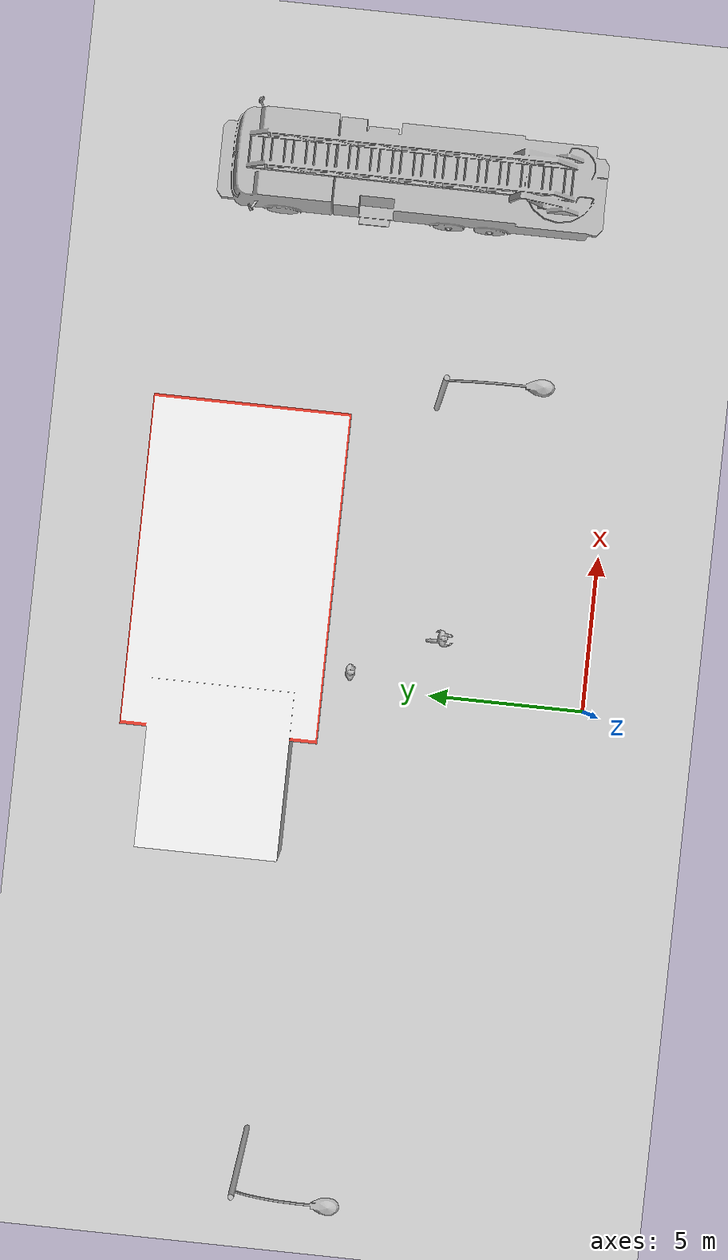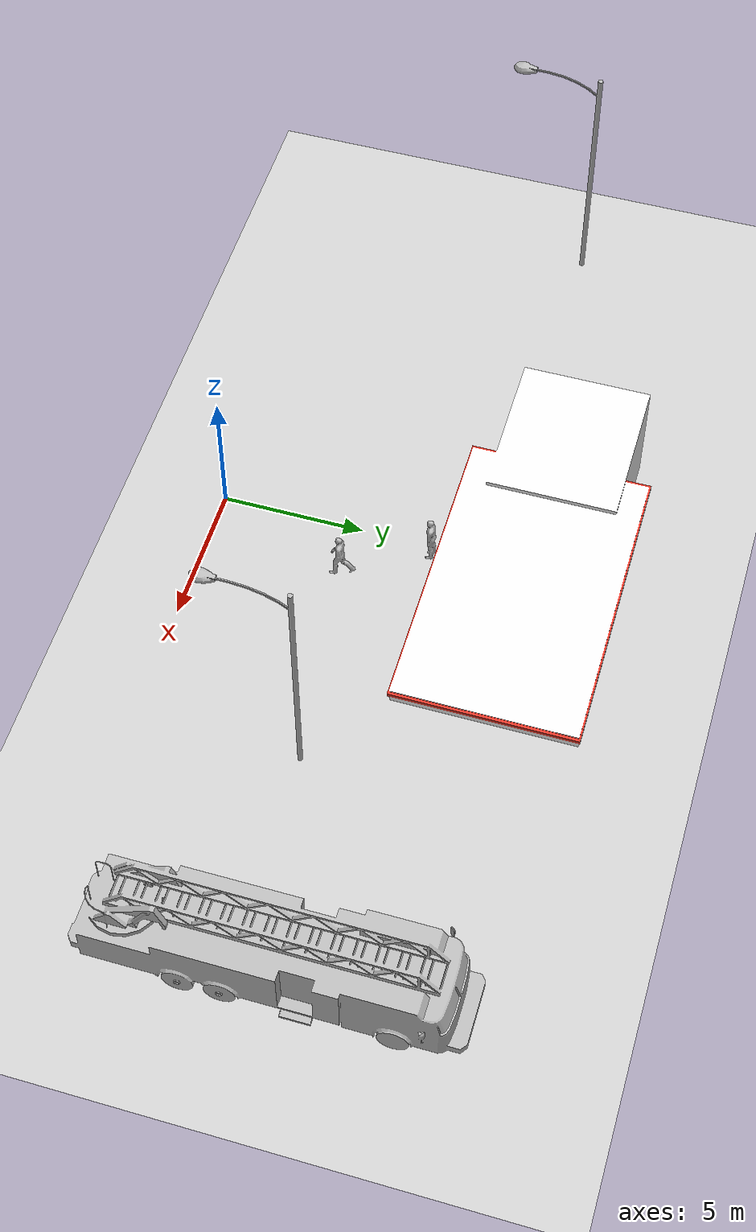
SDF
<sdf version="1.6">
 <world name="default">
  <light name="sun" type="directional">
   <pose>0 0 10 0 -0 0</pose>
   <diffuse>0.8 0.8 0.8 1</diffuse>
   <specular>0.2 0.2 0.2 1</specular>
   <attenuation>
    <range>1000</range>
    <constant>0.9</constant>
    <linear>0.01</linear>
    <quadratic>0.001</quadratic>
   </attenuation>
   <direction>-0.5 0.1 -0.9</direction>
  </light>
  <model name="ground_plane">
   <static>1</static>
   <link name="link">
    <collision name="collision">
     <geometry><plane><normal>0 0 1</normal><size>100 100</size></plane></geometry>
     <surface>
      <contact><collide_bitmask>65535</collide_bitmask></contact>
      <friction><ode><mu>100</mu><mu2>50</mu2></ode></friction>
     </surface>
    </collision>
    <visual name="visual">
     <cast_shadows>0</cast_shadows>
     <geometry><plane><normal>0 0 1</normal><size>100 100</size></plane></geometry>
     <material>
      <script><uri>file://media/materials/scripts/gazebo.material</uri><name>Gazebo/Grey</name></script>
     </material>
    </visual>
   </link>
  </model>
  <gravity>0 0 -9.8</gravity>
  <magnetic_field>6e-06 2.3e-05 -4.2e-05</magnetic_field>
  <atmosphere type="adiabatic"/>
  <physics name="default_physics" default="0" type="ode">
   <max_step_size>0.001</max_step_size>
   <real_time_factor>1</real_time_factor>
   <real_time_update_rate>1000</real_time_update_rate>
  </physics>
  <scene><ambient>0.4 0.4 0.4 1</ambient><background>0.7 0.7 0.7 1</background><shadows>1</shadows></scene>
  <audio><device>default</device></audio>
  <spherical_coordinates>
   <surface_model>EARTH_WGS84</surface_model>
   <latitude_deg>0</latitude_deg>
   <longitude_deg>0</longitude_deg>
   <elevation>0</elevation>
   <heading_deg>0</heading_deg>
  </spherical_coordinates>
  <model name="Gas Station">
   <static>1</static>
   <link name="link">
    <collision name="collision">
     <geometry><mesh><uri>model://gas_station/meshes/gas_station.dae</uri></mesh></geometry>
    </collision>
    <visual name="visual">
     <geometry><mesh><uri>model://gas_station/meshes/gas_station.dae</uri></mesh></geometry>
     <material>
      <script>
       <uri>model://gas_station/materials/scripts</uri>
       <uri>model://gas_station/materials/textures</uri>
       <name>GasStation/Diffuse</name>
      </script>
      <shader type="normal_map_tangent_space"><normal_map>GasStation_Normal.png</normal_map></shader>
     </material>
    </visual>
   </link>
   <pose>0.967809 11.4225 0 0 -0 0</pose>
  </model>
  <model name="person_walking">
   <link name="link">
    <inertial>
     <pose>0 0 0.95 0 -0 0</pose>
     <mass>80</mass>
     <inertia><ixx>27.82</ixx><ixy>0</ixy><ixz>0</ixz><iyy>24.88</iyy><iyz>0</iyz><izz>4.57</izz></inertia>
    </inertial>
    <collision name="bottom">
     <pose>0 0 0.01 0 -0 0</pose>
     <geometry><box><size>0.35 0.75 0.02</size></box></geometry>
    </collision>
    <collision name="person">
     <pose>0 0 -0.02 0 -0 0</pose>
     <geometry><mesh><uri>model://person_walking/meshes/walking.dae</uri></mesh></geometry>
    </collision>
    <visual name="visual">
     <pose>0 0 -0.02 0 -0 0</pose>
     <geometry><mesh><uri>model://person_walking/meshes/walking.dae</uri></mesh></geometry>
    </visual>
   </link>
   <pose>1.88881 4.81923 -1e-06 2e-06 1e-06 -0.001238</pose>
  </model>
  <model name="person_standing">
   <link name="link">
    <inertial>
     <pose>0 -0.1 0.95 0 -0 0</pose>
     <mass>80</mass>
     <inertia><ixx>24.88</ixx><ixy>0</ixy><ixz>0</ixz><iyy>25.73</iyy><iyz>0</iyz><izz>2.48</izz></inertia>
    </inertial>
    <collision name="bottom">
     <pose>0 -0.1 0.01 0 -0 0</pose>
     <geometry><box><size>0.5 0.35 0.02</size></box></geometry>
    </collision>
    <collision name="person">
     <pose>0 0 0.02 0.04 -0 0</pose>
     <geometry><mesh><uri>model://person_standing/meshes/standing.dae</uri></mesh></geometry>
    </collision>
    <visual name="visual">
     <pose>0 0 0.02 0.04 -0 0</pose>
     <geometry><mesh><uri>model://person_standing/meshes/standing.dae</uri></mesh></geometry>
    </visual>
   </link>
   <pose>0.523785 7.68439 0.234583 0 0 -0.009395</pose>
  </model>
  <model name="fire_truck">
   <static>1</static>
   <link name="link">
    <collision name="collision">
     <geometry>
      <mesh><scale>0.1 0.1 0.1</scale><uri>model://fire_truck/meshes/fire_truck.obj</uri></mesh>
     </geometry>
    </collision>
    <visual name="visual">
     <geometry>
      <mesh><scale>0.1 0.1 0.1</scale><uri>model://fire_truck/meshes/fire_truck.obj</uri></mesh>
     </geometry>
    </visual>
   </link>
   <pose>16.4626 7.58608 0 0 -0 0</pose>
  </model>
  <model name="Lamp Post">
   <static>1</static>
   <link name="link">
    <collision name="collision">
     <geometry><mesh><uri>model://lamp_post/meshes/lamp_post.dae</uri><scale>3 3 3</scale></mesh></geometry>
    </collision>
    <visual name="visual">
     <geometry><mesh><uri>model://lamp_post/meshes/lamp_post.dae</uri><scale>3 3 3</scale></mesh></geometry>
    </visual>
   </link>
   <pose>9.28215 5.69397 0 0 -0 0</pose>
  </model>
  <model name="Lamp Post_0">
   <static>1</static>
   <link name="link">
    <collision name="collision">
     <geometry><mesh><uri>model://lamp_post/meshes/lamp_post.dae</uri><scale>3 3 3</scale></mesh></geometry>
    </collision>
    <visual name="visual">
     <geometry><mesh><uri>model://lamp_post/meshes/lamp_post.dae</uri><scale>3 3 3</scale></mesh></geometry>
    </visual>
   </link>
   <pose>-14.5068 9.36563 0 0 -0 0</pose>
  </model>
 </world>
</sdf>
